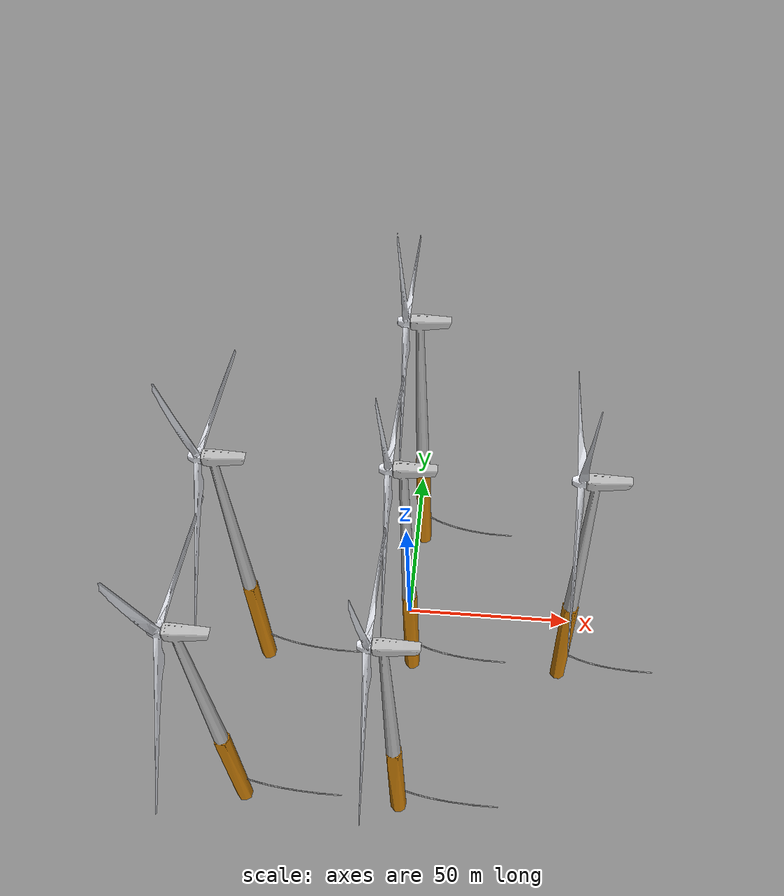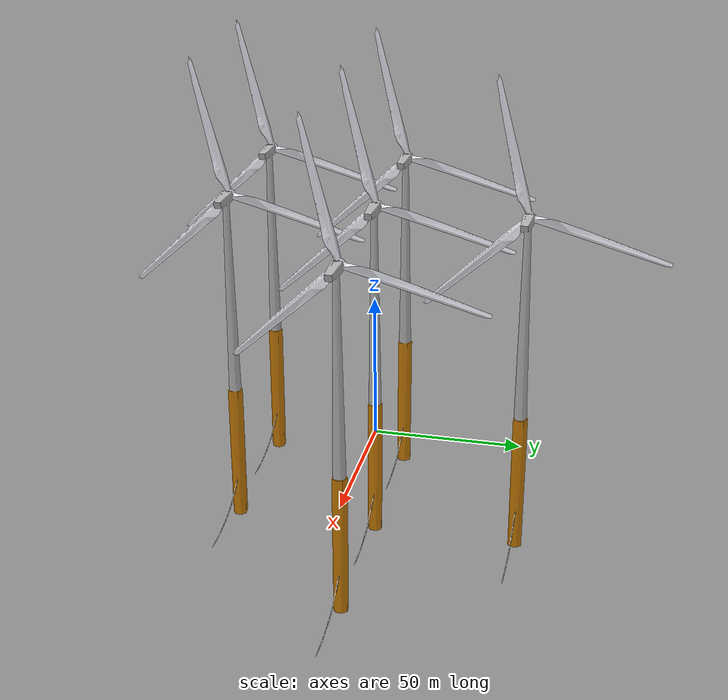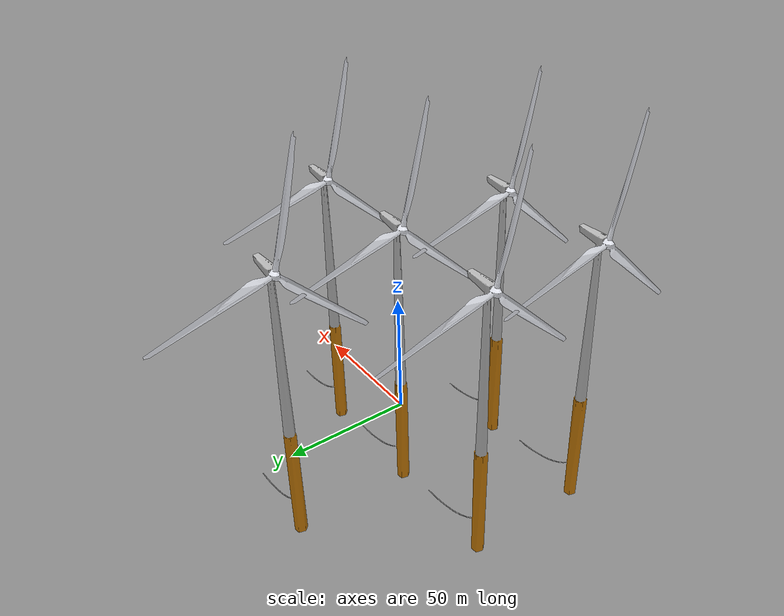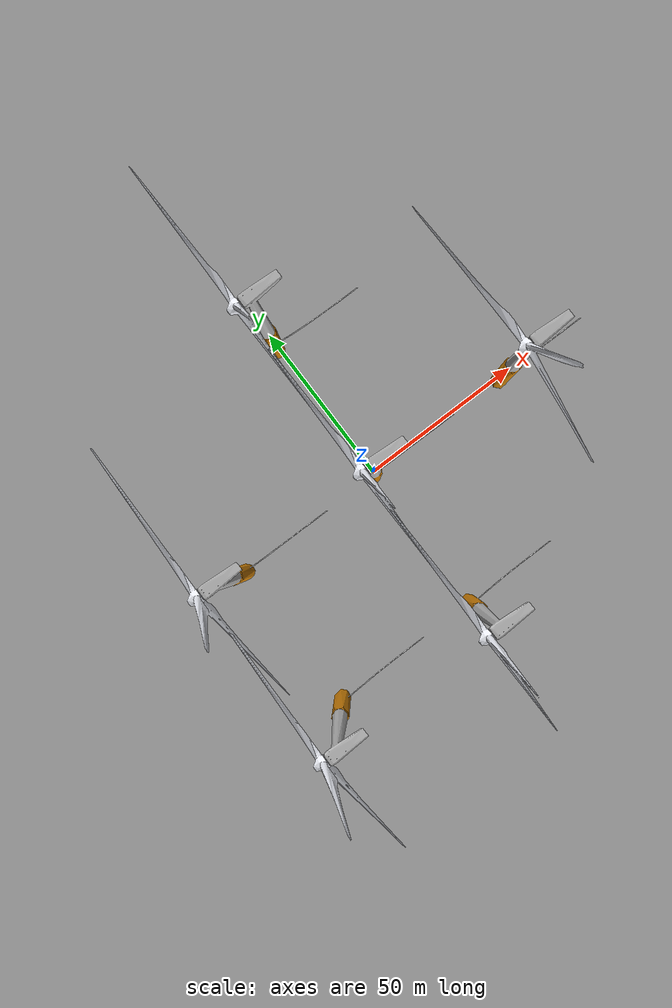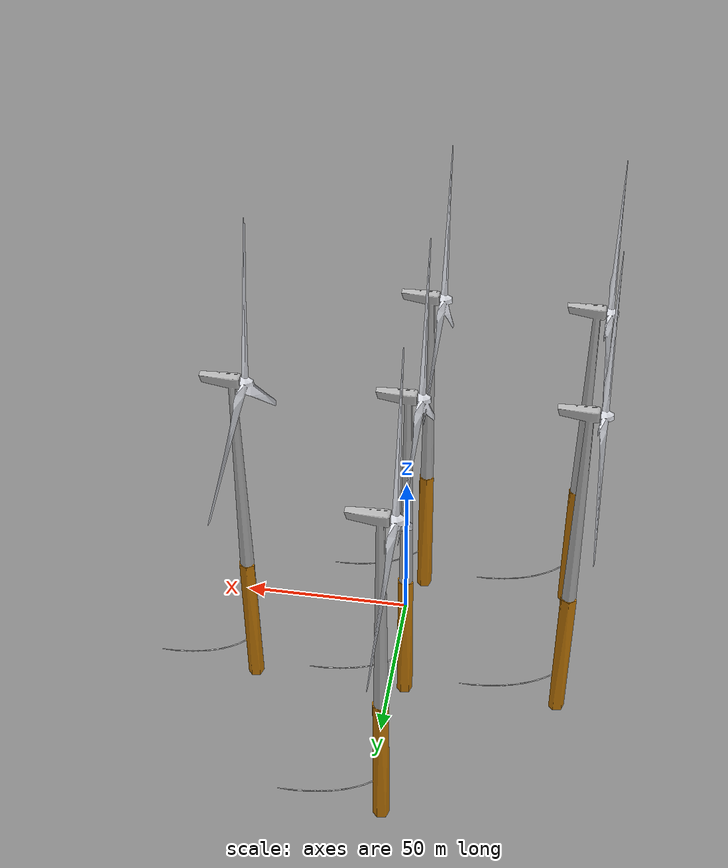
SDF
<sdf version="1.6">
 <world name="turbine_world">
  <include><uri>model://sun</uri></include>
  <include><name>turbine1</name><uri>model://turbine_rotor</uri></include>
  <include><name>turbine2</name><uri>model://turbine_rotor</uri><pose>0 50 0 0 0 0</pose></include>
  <include><name>turbine3</name><uri>model://turbine_rotor</uri><pose>50 0 0 0 0 0</pose></include>
  <include><name>turbine4</name><uri>model://turbine_rotor</uri><pose>0 -50 0 0 0 0</pose></include>
  <include><name>turbine5</name><uri>model://turbine_rotor</uri><pose>-50 0 0 0 0 0</pose></include>
  <include><name>turbine6</name><uri>model://turbine_rotor</uri><pose>-50 -50 0 0 0 0</pose></include>
  <plugin name="underwater_current_plugin" filename="libuuv_underwater_current_ros_plugin.so">
   <namespace>hydrodynamics</namespace>
   <constant_current>
    <topic>current_velocity</topic>
    <velocity><mean>0</mean><min>0</min><max>0</max><mu>0.0</mu><noiseAmp>0.0</noiseAmp></velocity>
    <horizontal_angle>
     <mean>0</mean>
     <min>-3.141592653589793238</min>
     <max>3.141592653589793238</max>
     <mu>0.0</mu>
     <noiseAmp>0.0</noiseAmp>
    </horizontal_angle>
    <vertical_angle>
     <mean>0</mean>
     <min>-3.141592653589793238</min>
     <max>3.141592653589793238</max>
     <mu>0.0</mu>
     <noiseAmp>0.0</noiseAmp>
    </vertical_angle>
   </constant_current>
  </plugin>
  <plugin name="sc_interface" filename="libuuv_sc_ros_interface_plugin.so"/>
 </world>
</sdf>

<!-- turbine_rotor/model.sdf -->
<sdf version="1.6">

  <model name='turbine'>

    <link name="rotor">
      <pose>0 0 81.7 0 0 0</pose>

      <inertial>
        <mass>15</mass>
        <inertia>
          <ixx>1.0051</ixx>
          <iyy>1.0051</iyy>
          <izz>1.0090</izz>
          <ixy>0</ixy>
          <ixy>0</ixy>
          <ixz>0</ixz>
          <iyz>0</iyz>
        </inertia>
     </inertial>

      <visual name="visual">
          <geometry>
            <mesh>
              <uri>model://turbine_rotor/meshes/rotor_low.dae</uri>
            </mesh>
          </geometry>
      </visual>
    </link>

    <model name='turbine_base'>

    <static>1</static>
    <pose frame=''>0 0 0 0 0 0</pose>

    <link name='mast'>

      <inertial>
        <mass>100000</mass>
        <inertia>
          <ixx>100000</ixx>
          <iyy>100000</iyy>
          <izz>100000</izz>
          <ixy>0</ixy>
          <ixy>0</ixy>
          <ixz>0</ixz>
          <iyz>0</iyz>
        </inertia>
      </inertial>

      <collision name='collision'>
        <pose>0 0 0 0 0 0</pose>
        <geometry>
          <mesh><uri>model://turbine_rotor/meshes/monopile2_low.dae</uri></mesh>
        </geometry>
        <max_contacts>10</max_contacts>
      </collision>

      <visual name='visual'>
        <pose>0 0 0 0 0 0</pose>
        <geometry>
          <mesh><uri>model://turbine_rotor/meshes/monopile2_low.dae</uri></mesh>
        </geometry>
      </visual>

      <self_collide>0</self_collide>
      <enable_wind>0</enable_wind>
      <kinematic>0</kinematic>
    </link>
    </model>

    <joint type="revolute" name="rotor_hinge">
      <pose>0 0 0 0 0 0</pose>
      <child>rotor</child>
      <parent>turbine_base::mast</parent>
      <axis>
        <xyz>1 0 0</xyz>
      </axis>
    </joint>

  -->

  </model>
</sdf>
